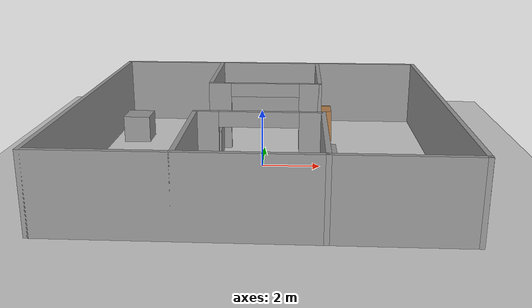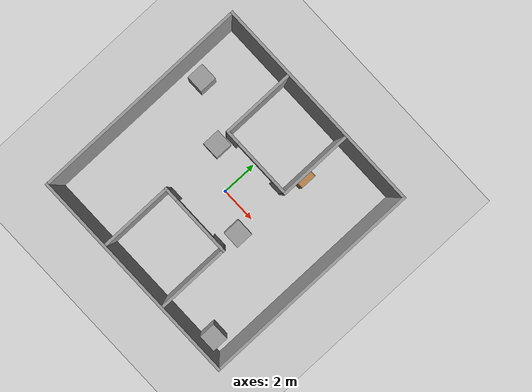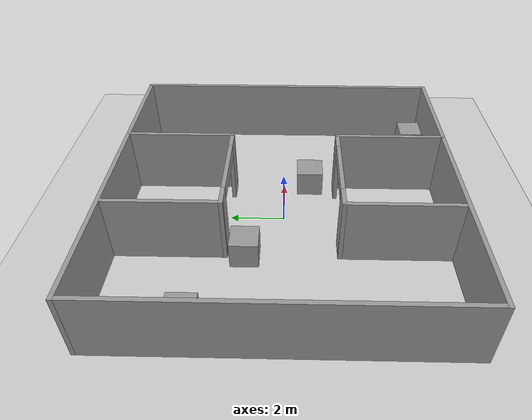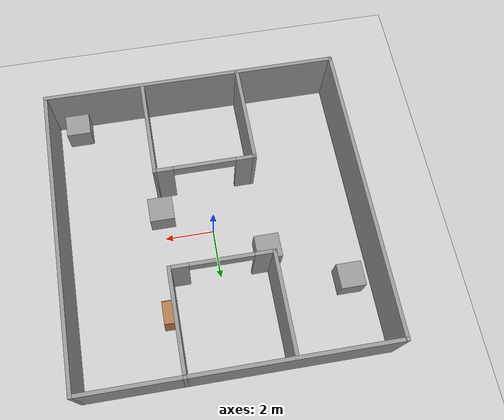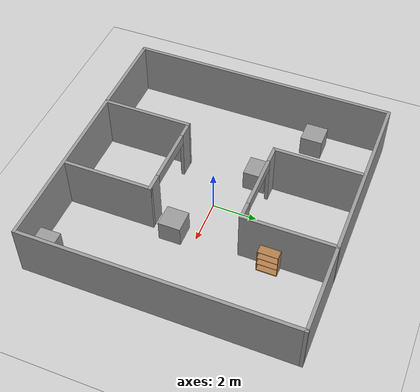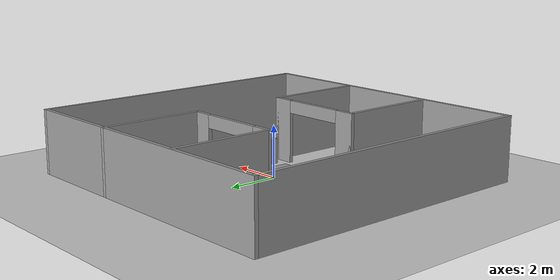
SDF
<sdf version="1.6">
 <world name="default">
  <light name="sun" type="directional">
   <pose>0 0 10 0 -0 0</pose>
   <diffuse>0.8 0.8 0.8 1</diffuse>
   <specular>0.1 0.1 0.1 1</specular>
   <attenuation>
    <range>1000</range>
    <constant>0.9</constant>
    <linear>0.01</linear>
    <quadratic>0.001</quadratic>
   </attenuation>
   <direction>-0.5 0.5 -1</direction>
  </light>
  <model name="ground_plane">
   <static>1</static>
   <link name="link">
    <collision name="collision">
     <geometry><plane><normal>0 0 1</normal><size>100 100</size></plane></geometry>
     <surface><friction><ode><mu>100</mu><mu2>50</mu2></ode></friction></surface>
    </collision>
    <visual name="visual">
     <cast_shadows>0</cast_shadows>
     <geometry><plane><normal>0 0 1</normal><size>100 100</size></plane></geometry>
     <material>
      <script><uri>file://media/materials/scripts/gazebo.material</uri><name>Gazebo/Grey</name></script>
     </material>
    </visual>
   </link>
  </model>
  <gravity>0 0 -9.8</gravity>
  <magnetic_field>6e-06 2.3e-05 -4.2e-05</magnetic_field>
  <atmosphere type="adiabatic"/>
  <physics name="default_physics" default="0" type="ode">
   <max_step_size>0.001</max_step_size>
   <real_time_factor>1</real_time_factor>
   <real_time_update_rate>1000</real_time_update_rate>
  </physics>
  <scene><ambient>0.4 0.4 0.4 1</ambient><background>0.7 0.7 0.7 1</background><shadows>1</shadows></scene>
  <spherical_coordinates>
   <surface_model>EARTH_WGS84</surface_model>
   <latitude_deg>0</latitude_deg>
   <longitude_deg>0</longitude_deg>
   <elevation>0</elevation>
   <heading_deg>0</heading_deg>
  </spherical_coordinates>
  <model name="Warehouse_">
   <link name="Wall_57">
    <collision name="Wall_57_Collision">
     <geometry><box><size>12.15 0.15 2.5</size></box></geometry>
     <pose>0 0 1.25 0 -0 0</pose>
    </collision>
    <visual name="Wall_57_Visual">
     <pose>0 0 1.25 0 -0 0</pose>
     <geometry><box><size>12.15 0.15 2.5</size></box></geometry>
     <material>
      <script><uri>file://media/materials/scripts/gazebo.material</uri><name>Gazebo/Grey</name></script>
      <ambient>1 1 1 1</ambient>
     </material>
    </visual>
    <pose>0 -6 0 0 -0 0</pose>
   </link>
   <link name="Wall_59">
    <collision name="Wall_59_Collision">
     <geometry><box><size>12.15 0.15 2.5</size></box></geometry>
     <pose>0 0 1.25 0 -0 0</pose>
    </collision>
    <visual name="Wall_59_Visual">
     <pose>0 0 1.25 0 -0 0</pose>
     <geometry><box><size>12.15 0.15 2.5</size></box></geometry>
     <material>
      <script><uri>file://media/materials/scripts/gazebo.material</uri><name>Gazebo/Grey</name></script>
      <ambient>1 1 1 1</ambient>
     </material>
    </visual>
    <pose>6 0 0 0 -0 1.5708</pose>
   </link>
   <link name="Wall_61">
    <collision name="Wall_61_Collision">
     <geometry><box><size>12.15 0.15 2.5</size></box></geometry>
     <pose>0 0 1.25 0 -0 0</pose>
    </collision>
    <visual name="Wall_61_Visual">
     <pose>0 0 1.25 0 -0 0</pose>
     <geometry><box><size>12.15 0.15 2.5</size></box></geometry>
     <material>
      <script><uri>file://media/materials/scripts/gazebo.material</uri><name>Gazebo/Grey</name></script>
      <ambient>1 1 1 1</ambient>
     </material>
    </visual>
    <pose>0 6 0 0 -0 3.14159</pose>
   </link>
   <link name="Wall_64">
    <collision name="Wall_64_Collision">
     <geometry><box><size>12.15 0.15 2.5</size></box></geometry>
     <pose>0 0 1.25 0 -0 0</pose>
    </collision>
    <visual name="Wall_64_Visual">
     <pose>0 0 1.25 0 -0 0</pose>
     <geometry><box><size>12.15 0.15 2.5</size></box></geometry>
     <material>
      <script><uri>file://media/materials/scripts/gazebo.material</uri><name>Gazebo/Grey</name></script>
      <ambient>1 1 1 1</ambient>
     </material>
    </visual>
    <pose>-6 0 0 0 0 -1.5708</pose>
   </link>
   <link name="Wall_68">
    <pose>0 -2 0 0 -0 0</pose>
    <visual name="Wall_68_Visual_0">
     <pose>-1.6625 0 1.25 0 -0 0</pose>
     <geometry><box><size>0.825 0.15 2.5</size></box></geometry>
     <material>
      <script><uri>file://media/materials/scripts/gazebo.material</uri><name>Gazebo/Grey</name></script>
      <ambient>1 1 1 1</ambient>
     </material>
    </visual>
    <collision name="Wall_68_Collision_0">
     <geometry><box><size>0.825 0.15 2.5</size></box></geometry>
     <pose>-1.6625 0 1.25 0 -0 0</pose>
    </collision>
    <visual name="Wall_68_Visual_1">
     <pose>1.6625 0 1.25 0 -0 0</pose>
     <geometry><box><size>0.825 0.15 2.5</size></box></geometry>
     <material>
      <script><uri>file://media/materials/scripts/gazebo.material</uri><name>Gazebo/Grey</name></script>
      <ambient>1 1 1 1</ambient>
     </material>
    </visual>
    <collision name="Wall_68_Collision_1">
     <geometry><box><size>0.825 0.15 2.5</size></box></geometry>
     <pose>1.6625 0 1.25 0 -0 0</pose>
    </collision>
    <visual name="Wall_68_Visual_2">
     <pose>0 0 2.25 0 -0 0</pose>
     <geometry><box><size>2.5 0.15 0.5</size></box></geometry>
     <material>
      <script><uri>file://media/materials/scripts/gazebo.material</uri><name>Gazebo/Grey</name></script>
      <ambient>1 1 1 1</ambient>
     </material>
    </visual>
    <collision name="Wall_68_Collision_2">
     <geometry><box><size>2.5 0.15 0.5</size></box></geometry>
     <pose>0 0 2.25 0 -0 0</pose>
    </collision>
   </link>
   <link name="Wall_70">
    <collision name="Wall_70_Collision">
     <geometry><box><size>4.15 0.15 2.5</size></box></geometry>
     <pose>0 0 1.25 0 -0 0</pose>
    </collision>
    <visual name="Wall_70_Visual">
     <pose>0 0 1.25 0 -0 0</pose>
     <geometry><box><size>4.15 0.15 2.5</size></box></geometry>
     <material>
      <script><uri>file://media/materials/scripts/gazebo.material</uri><name>Gazebo/Grey</name></script>
      <ambient>1 1 1 1</ambient>
     </material>
    </visual>
    <pose>2 -4 0 0 0 -1.5708</pose>
   </link>
   <link name="Wall_72">
    <collision name="Wall_72_Collision">
     <geometry><box><size>4.15 0.15 2.5</size></box></geometry>
     <pose>0 0 1.25 0 -0 0</pose>
    </collision>
    <visual name="Wall_72_Visual">
     <pose>0 0 1.25 0 -0 0</pose>
     <geometry><box><size>4.15 0.15 2.5</size></box></geometry>
     <material>
      <script><uri>file://media/materials/scripts/gazebo.material</uri><name>Gazebo/Grey</name></script>
      <ambient>1 1 1 1</ambient>
     </material>
    </visual>
    <pose>-2 -4 0 0 0 -1.5708</pose>
   </link>
   <link name="Wall_74">
    <pose>0 2 0 0 -0 0</pose>
    <visual name="Wall_74_Visual_0">
     <pose>-1.6625 0 1.25 0 -0 0</pose>
     <geometry><box><size>0.825 0.15 2.5</size></box></geometry>
     <material>
      <script><uri>file://media/materials/scripts/gazebo.material</uri><name>Gazebo/Grey</name></script>
      <ambient>1 1 1 1</ambient>
     </material>
    </visual>
    <collision name="Wall_74_Collision_0">
     <geometry><box><size>0.825 0.15 2.5</size></box></geometry>
     <pose>-1.6625 0 1.25 0 -0 0</pose>
    </collision>
    <visual name="Wall_74_Visual_1">
     <pose>1.6625 0 1.25 0 -0 0</pose>
     <geometry><box><size>0.825 0.15 2.5</size></box></geometry>
     <material>
      <script><uri>file://media/materials/scripts/gazebo.material</uri><name>Gazebo/Grey</name></script>
      <ambient>1 1 1 1</ambient>
     </material>
    </visual>
    <collision name="Wall_74_Collision_1">
     <geometry><box><size>0.825 0.15 2.5</size></box></geometry>
     <pose>1.6625 0 1.25 0 -0 0</pose>
    </collision>
    <visual name="Wall_74_Visual_2">
     <pose>0 0 2.25 0 -0 0</pose>
     <geometry><box><size>2.5 0.15 0.5</size></box></geometry>
     <material>
      <script><uri>file://media/materials/scripts/gazebo.material</uri><name>Gazebo/Grey</name></script>
      <ambient>1 1 1 1</ambient>
     </material>
    </visual>
    <collision name="Wall_74_Collision_2">
     <geometry><box><size>2.5 0.15 0.5</size></box></geometry>
     <pose>0 0 2.25 0 -0 0</pose>
    </collision>
   </link>
   <link name="Wall_76">
    <collision name="Wall_76_Collision">
     <geometry><box><size>4.15 0.15 2.5</size></box></geometry>
     <pose>0 0 1.25 0 -0 0</pose>
    </collision>
    <visual name="Wall_76_Visual">
     <pose>0 0 1.25 0 -0 0</pose>
     <geometry><box><size>4.15 0.15 2.5</size></box></geometry>
     <material>
      <script><uri>file://media/materials/scripts/gazebo.material</uri><name>Gazebo/Grey</name></script>
      <ambient>1 1 1 1</ambient>
     </material>
    </visual>
    <pose>-2 4 0 0 -0 1.5708</pose>
   </link>
   <link name="Wall_78">
    <collision name="Wall_78_Collision">
     <geometry><box><size>4.15 0.15 2.5</size></box></geometry>
     <pose>0 0 1.25 0 -0 0</pose>
    </collision>
    <visual name="Wall_78_Visual">
     <pose>0 0 1.25 0 -0 0</pose>
     <geometry><box><size>4.15 0.15 2.5</size></box></geometry>
     <material>
      <script><uri>file://media/materials/scripts/gazebo.material</uri><name>Gazebo/Grey</name></script>
      <ambient>1 1 1 1</ambient>
     </material>
    </visual>
    <pose>2 4 0 0 -0 1.5708</pose>
   </link>
   <static>1</static>
  </model>
  <model name="bookshelf_0">
   <link name="link">
    <pose>-0.425483 -0.00785 0 -0.026628 -0.000192 1.5636</pose>
    <inertial><mass>1</mass></inertial>
    <visual name="visual1">
     <pose>0 0.005 0.6 0 -0 0</pose>
     <geometry><box><size>0.9 0.01 1.2</size></box></geometry>
     <material>
      <script><uri>file://media/materials/scripts/gazebo.material</uri><name>Gazebo/Wood</name></script>
      <ambient>1 1 1 1</ambient>
      <diffuse>1 1 1 1</diffuse>
      <specular>0.2 0.2 0.2 1</specular>
      <emissive>0 0 0 1</emissive>
     </material>
    </visual>
    <visual name="visual2">
     <pose>0.45 -0.195 0.6 0 -0 0</pose>
     <geometry><box><size>0.02 0.4 1.2</size></box></geometry>
     <material>
      <script><uri>file://media/materials/scripts/gazebo.material</uri><name>Gazebo/Wood</name></script>
      <ambient>1 1 1 1</ambient>
      <diffuse>1 1 1 1</diffuse>
      <specular>0.2 0.2 0.2 1</specular>
      <emissive>0 0 0 1</emissive>
     </material>
    </visual>
    <visual name="visual3">
     <pose>-0.45 -0.195 0.6 0 -0 0</pose>
     <geometry><box><size>0.02 0.4 1.2</size></box></geometry>
     <material>
      <script><uri>file://media/materials/scripts/gazebo.material</uri><name>Gazebo/Wood</name></script>
      <ambient>1 1 1 1</ambient>
      <diffuse>1 1 1 1</diffuse>
      <specular>0.2 0.2 0.2 1</specular>
      <emissive>0 0 0 1</emissive>
     </material>
    </visual>
    <visual name="visual4">
     <pose>0 -0.195 0.03 0 -0 0</pose>
     <geometry><box><size>0.88 0.4 0.06</size></box></geometry>
     <material>
      <script><uri>file://media/materials/scripts/gazebo.material</uri><name>Gazebo/Wood</name></script>
      <ambient>1 1 1 1</ambient>
      <diffuse>1 1 1 1</diffuse>
      <specular>0.2 0.2 0.2 1</specular>
      <emissive>0 0 0 1</emissive>
     </material>
    </visual>
    <visual name="visual5">
     <pose>0 -0.195 1.19 0 -0 0</pose>
     <geometry><box><size>0.88 0.4 0.02</size></box></geometry>
     <material>
      <script><uri>file://media/materials/scripts/gazebo.material</uri><name>Gazebo/Wood</name></script>
      <ambient>1 1 1 1</ambient>
      <diffuse>1 1 1 1</diffuse>
      <specular>0.2 0.2 0.2 1</specular>
      <emissive>0 0 0 1</emissive>
     </material>
    </visual>
    <visual name="visual6">
     <pose>0 -0.195 0.43 0 -0 0</pose>
     <geometry><box><size>0.88 0.4 0.02</size></box></geometry>
     <material>
      <script><uri>file://media/materials/scripts/gazebo.material</uri><name>Gazebo/Wood</name></script>
      <ambient>1 1 1 1</ambient>
      <diffuse>1 1 1 1</diffuse>
      <specular>0.2 0.2 0.2 1</specular>
      <emissive>0 0 0 1</emissive>
     </material>
    </visual>
    <visual name="visual7">
     <pose>0 -0.195 0.8 0 -0 0</pose>
     <geometry><box><size>0.88 0.4 0.02</size></box></geometry>
     <material>
      <script><uri>file://media/materials/scripts/gazebo.material</uri><name>Gazebo/Wood</name></script>
      <ambient>1 1 1 1</ambient>
      <diffuse>1 1 1 1</diffuse>
      <specular>0.2 0.2 0.2 1</specular>
      <emissive>0 0 0 1</emissive>
     </material>
    </visual>
    <collision name="back">
     <pose>0 0.005 0.6 0 -0 0</pose>
     <geometry><box><size>0.9 0.01 1.2</size></box></geometry>
     <surface>
      <friction>
       <ode><mu>1</mu><mu2>1</mu2><fdir1>0 0 0</fdir1><slip1>0</slip1><slip2>0</slip2></ode>
       <torsional>
        <coefficient>1</coefficient>
        <patch_radius>0</patch_radius>
        <surface_radius>0</surface_radius>
        <use_patch_radius>1</use_patch_radius>
        <ode><slip>0</slip></ode>
       </torsional>
      </friction>
      <bounce><restitution_coefficient>0</restitution_coefficient><threshold>1e+06</threshold></bounce>
      <contact>
       <collide_without_contact>0</collide_without_contact>
       <collide_without_contact_bitmask>1</collide_without_contact_bitmask>
       <collide_bitmask>1</collide_bitmask>
       <ode>
        <soft_cfm>0</soft_cfm>
        <soft_erp>0.2</soft_erp>
        <kp>1e+13</kp>
        <kd>1</kd>
        <max_vel>0.01</max_vel>
        <min_depth>0</min_depth>
       </ode>
       <bullet>
        <split_impulse>1</split_impulse>
        <split_impulse_penetration_threshold>-0.01</split_impulse_penetration_threshold>
        <soft_cfm>0</soft_cfm>
        <soft_erp>0.2</soft_erp>
        <kp>1e+13</kp>
        <kd>1</kd>
       </bullet>
      </contact>
     </surface>
    </collision>
    <collision name="left_side">
     <pose>0.45 -0.195 0.6 0 -0 0</pose>
     <geometry><box><size>0.02 0.4 1.2</size></box></geometry>
     <surface>
      <friction>
       <ode><mu>1</mu><mu2>1</mu2><fdir1>0 0 0</fdir1><slip1>0</slip1><slip2>0</slip2></ode>
       <torsional>
        <coefficient>1</coefficient>
        <patch_radius>0</patch_radius>
        <surface_radius>0</surface_radius>
        <use_patch_radius>1</use_patch_radius>
        <ode><slip>0</slip></ode>
       </torsional>
      </friction>
      <bounce><restitution_coefficient>0</restitution_coefficient><threshold>1e+06</threshold></bounce>
      <contact>
       <collide_without_contact>0</collide_without_contact>
       <collide_without_contact_bitmask>1</collide_without_contact_bitmask>
       <collide_bitmask>1</collide_bitmask>
       <ode>
        <soft_cfm>0</soft_cfm>
        <soft_erp>0.2</soft_erp>
        <kp>1e+13</kp>
        <kd>1</kd>
        <max_vel>0.01</max_vel>
        <min_depth>0</min_depth>
       </ode>
       <bullet>
        <split_impulse>1</split_impulse>
        <split_impulse_penetration_threshold>-0.01</split_impulse_penetration_threshold>
        <soft_cfm>0</soft_cfm>
        <soft_erp>0.2</soft_erp>
        <kp>1e+13</kp>
        <kd>1</kd>
       </bullet>
      </contact>
     </surface>
    </collision>
    <collision name="right_side">
     <pose>-0.45 -0.195 0.6 0 -0 0</pose>
     <geometry><box><size>0.02 0.4 1.2</size></box></geometry>
     <surface>
      <friction>
       <ode><mu>1</mu><mu2>1</mu2><fdir1>0 0 0</fdir1><slip1>0</slip1><slip2>0</slip2></ode>
       <torsional>
        <coefficient>1</coefficient>
        <patch_radius>0</patch_radius>
        <surface_radius>0</surface_radius>
        <use_patch_radius>1</use_patch_radius>
        <ode><slip>0</slip></ode>
       </torsional>
      </friction>
      <bounce><restitution_coefficient>0</restitution_coefficient><threshold>1e+06</threshold></bounce>
      <contact>
       <collide_without_contact>0</collide_without_contact>
       <collide_without_contact_bitmask>1</collide_without_contact_bitmask>
       <collide_bitmask>1</collide_bitmask>
       <ode>
        <soft_cfm>0</soft_cfm>
        <soft_erp>0.2</soft_erp>
        <kp>1e+13</kp>
        <kd>1</kd>
        <max_vel>0.01</max_vel>
        <min_depth>0</min_depth>
       </ode>
       <bullet>
        <split_impulse>1</split_impulse>
        <split_impulse_penetration_threshold>-0.01</split_impulse_penetration_threshold>
        <soft_cfm>0</soft_cfm>
        <soft_erp>0.2</soft_erp>
        <kp>1e+13</kp>
        <kd>1</kd>
       </bullet>
      </contact>
     </surface>
    </collision>
    <collision name="bottom">
     <pose>0 -0.195 0.03 0 -0 0</pose>
     <geometry><box><size>0.88 0.4 0.06</size></box></geometry>
     <surface>
      <friction>
       <ode><mu>1</mu><mu2>1</mu2><fdir1>0 0 0</fdir1><slip1>0</slip1><slip2>0</slip2></ode>
       <torsional>
        <coefficient>1</coefficient>
        <patch_radius>0</patch_radius>
        <surface_radius>0</surface_radius>
        <use_patch_radius>1</use_patch_radius>
        <ode><slip>0</slip></ode>
       </torsional>
      </friction>
      <bounce><restitution_coefficient>0</restitution_coefficient><threshold>1e+06</threshold></bounce>
      <contact>
       <collide_without_contact>0</collide_without_contact>
       <collide_without_contact_bitmask>1</collide_without_contact_bitmask>
       <collide_bitmask>1</collide_bitmask>
       <ode>
        <soft_cfm>0</soft_cfm>
        <soft_erp>0.2</soft_erp>
        <kp>1e+13</kp>
        <kd>1</kd>
        <max_vel>0.01</max_vel>
        <min_depth>0</min_depth>
       </ode>
       <bullet>
        <split_impulse>1</split_impulse>
        <split_impulse_penetration_threshold>-0.01</split_impulse_penetration_threshold>
        <soft_cfm>0</soft_cfm>
        <soft_erp>0.2</soft_erp>
        <kp>1e+13</kp>
        <kd>1</kd>
       </bullet>
      </contact>
     </surface>
    </collision>
    <collision name="top">
     <pose>0 -0.195 1.19 0 -0 0</pose>
     <geometry><box><size>0.88 0.4 0.02</size></box></geometry>
     <surface>
      <friction>
       <ode><mu>1</mu><mu2>1</mu2><fdir1>0 0 0</fdir1><slip1>0</slip1><slip2>0</slip2></ode>
       <torsional>
        <coefficient>1</coefficient>
        <patch_radius>0</patch_radius>
        <surface_radius>0</surface_radius>
        <use_patch_radius>1</use_patch_radius>
        <ode><slip>0</slip></ode>
       </torsional>
      </friction>
      <bounce><restitution_coefficient>0</restitution_coefficient><threshold>1e+06</threshold></bounce>
      <contact>
       <collide_without_contact>0</collide_without_contact>
       <collide_without_contact_bitmask>1</collide_without_contact_bitmask>
       <collide_bitmask>1</collide_bitmask>
       <ode>
        <soft_cfm>0</soft_cfm>
        <soft_erp>0.2</soft_erp>
        <kp>1e+13</kp>
        <kd>1</kd>
        <max_vel>0.01</max_vel>
        <min_depth>0</min_depth>
       </ode>
       <bullet>
        <split_impulse>1</split_impulse>
        <split_impulse_penetration_threshold>-0.01</split_impulse_penetration_threshold>
        <soft_cfm>0</soft_cfm>
        <soft_erp>0.2</soft_erp>
        <kp>1e+13</kp>
        <kd>1</kd>
       </bullet>
      </contact>
     </surface>
    </collision>
    <collision name="low_shelf">
     <pose>0 -0.195 0.43 0 -0 0</pose>
     <geometry><box><size>0.88 0.4 0.02</size></box></geometry>
     <surface>
      <friction>
       <ode><mu>1</mu><mu2>1</mu2><fdir1>0 0 0</fdir1><slip1>0</slip1><slip2>0</slip2></ode>
       <torsional>
        <coefficient>1</coefficient>
        <patch_radius>0</patch_radius>
        <surface_radius>0</surface_radius>
        <use_patch_radius>1</use_patch_radius>
        <ode><slip>0</slip></ode>
       </torsional>
      </friction>
      <bounce><restitution_coefficient>0</restitution_coefficient><threshold>1e+06</threshold></bounce>
      <contact>
       <collide_without_contact>0</collide_without_contact>
       <collide_without_contact_bitmask>1</collide_without_contact_bitmask>
       <collide_bitmask>1</collide_bitmask>
       <ode>
        <soft_cfm>0</soft_cfm>
        <soft_erp>0.2</soft_erp>
        <kp>1e+13</kp>
        <kd>1</kd>
        <max_vel>0.01</max_vel>
        <min_depth>0</min_depth>
       </ode>
       <bullet>
        <split_impulse>1</split_impulse>
        <split_impulse_penetration_threshold>-0.01</split_impulse_penetration_threshold>
        <soft_cfm>0</soft_cfm>
        <soft_erp>0.2</soft_erp>
        <kp>1e+13</kp>
        <kd>1</kd>
       </bullet>
      </contact>
     </surface>
    </collision>
    <collision name="high_shelf">
     <pose>0 -0.195 0.8 0 -0 0</pose>
     <geometry><box><size>0.88 0.4 0.02</size></box></geometry>
     <surface>
      <friction>
       <ode><mu>1</mu><mu2>1</mu2><fdir1>0 0 0</fdir1><slip1>0</slip1><slip2>0</slip2></ode>
       <torsional>
        <coefficient>1</coefficient>
        <patch_radius>0</patch_radius>
        <surface_radius>0</surface_radius>
        <use_patch_radius>1</use_patch_radius>
        <ode><slip>0</slip></ode>
       </torsional>
      </friction>
      <bounce><restitution_coefficient>0</restitution_coefficient><threshold>1e+06</threshold></bounce>
      <contact>
       <collide_without_contact>0</collide_without_contact>
       <collide_without_contact_bitmask>1</collide_without_contact_bitmask>
       <collide_bitmask>1</collide_bitmask>
       <ode>
        <soft_cfm>0</soft_cfm>
        <soft_erp>0.2</soft_erp>
        <kp>1e+13</kp>
        <kd>1</kd>
        <max_vel>0.01</max_vel>
        <min_depth>0</min_depth>
       </ode>
       <bullet>
        <split_impulse>1</split_impulse>
        <split_impulse_penetration_threshold>-0.01</split_impulse_penetration_threshold>
        <soft_cfm>0</soft_cfm>
        <soft_erp>0.2</soft_erp>
        <kp>1e+13</kp>
        <kd>1</kd>
       </bullet>
      </contact>
     </surface>
    </collision>
   </link>
   <link name="link_0">
    <pose>-0.56517 -4.36239 0.5 0 -0 0</pose>
    <inertial>
     <mass>1</mass>
     <inertia>
      <ixx>0.166667</ixx>
      <ixy>0</ixy>
      <ixz>0</ixz>
      <iyy>0.166667</iyy>
      <iyz>0</iyz>
      <izz>0.166667</izz>
     </inertia>
    </inertial>
    <visual name="visual">
     <geometry><box><size>1 1 1</size></box></geometry>
     <material>
      <lighting>1</lighting>
      <script><uri>file://media/materials/scripts/gazebo.material</uri><name>Gazebo/Grey</name></script>
      <ambient>0.3 0.3 0.3 1</ambient>
      <diffuse>0.7 0.7 0.7 1</diffuse>
      <specular>0.01 0.01 0.01 1</specular>
      <emissive>0 0 0 1</emissive>
     </material>
    </visual>
    <collision name="collision">
     <geometry><box><size>1 1 1</size></box></geometry>
     <surface>
      <friction>
       <ode><mu>1</mu><mu2>1</mu2><fdir1>0 0 0</fdir1><slip1>0</slip1><slip2>0</slip2></ode>
       <torsional>
        <coefficient>1</coefficient>
        <patch_radius>0</patch_radius>
        <surface_radius>0</surface_radius>
        <use_patch_radius>1</use_patch_radius>
        <ode><slip>0</slip></ode>
       </torsional>
      </friction>
      <bounce><restitution_coefficient>0</restitution_coefficient><threshold>1e+06</threshold></bounce>
      <contact>
       <collide_without_contact>0</collide_without_contact>
       <collide_without_contact_bitmask>1</collide_without_contact_bitmask>
       <collide_bitmask>1</collide_bitmask>
       <ode>
        <soft_cfm>0</soft_cfm>
        <soft_erp>0.2</soft_erp>
        <kp>1e+13</kp>
        <kd>1</kd>
        <max_vel>0.01</max_vel>
        <min_depth>0</min_depth>
       </ode>
       <bullet>
        <split_impulse>1</split_impulse>
        <split_impulse_penetration_threshold>-0.01</split_impulse_penetration_threshold>
        <soft_cfm>0</soft_cfm>
        <soft_erp>0.2</soft_erp>
        <kp>1e+13</kp>
        <kd>1</kd>
       </bullet>
      </contact>
     </surface>
    </collision>
   </link>
   <link name="link_1">
    <pose>-4.57974 -2.05814 0.5 0 -0 0</pose>
    <inertial>
     <mass>1</mass>
     <inertia>
      <ixx>0.166667</ixx>
      <ixy>0</ixy>
      <ixz>0</ixz>
      <iyy>0.166667</iyy>
      <iyz>0</iyz>
      <izz>0.166667</izz>
     </inertia>
    </inertial>
    <visual name="visual">
     <geometry><box><size>1 1 1</size></box></geometry>
     <material>
      <lighting>1</lighting>
      <script><uri>file://media/materials/scripts/gazebo.material</uri><name>Gazebo/Grey</name></script>
      <ambient>0.3 0.3 0.3 1</ambient>
      <diffuse>0.7 0.7 0.7 1</diffuse>
      <specular>0.01 0.01 0.01 1</specular>
      <emissive>0 0 0 1</emissive>
     </material>
    </visual>
    <collision name="collision">
     <geometry><box><size>1 1 1</size></box></geometry>
     <surface>
      <friction>
       <ode><mu>1</mu><mu2>1</mu2><fdir1>0 0 0</fdir1><slip1>0</slip1><slip2>0</slip2></ode>
       <torsional>
        <coefficient>1</coefficient>
        <patch_radius>0</patch_radius>
        <surface_radius>0</surface_radius>
        <use_patch_radius>1</use_patch_radius>
        <ode><slip>0</slip></ode>
       </torsional>
      </friction>
      <bounce><restitution_coefficient>0</restitution_coefficient><threshold>1e+06</threshold></bounce>
      <contact>
       <collide_without_contact>0</collide_without_contact>
       <collide_without_contact_bitmask>1</collide_without_contact_bitmask>
       <collide_bitmask>1</collide_bitmask>
       <ode>
        <soft_cfm>0</soft_cfm>
        <soft_erp>0.2</soft_erp>
        <kp>1e+13</kp>
        <kd>1</kd>
        <max_vel>0.01</max_vel>
        <min_depth>0</min_depth>
       </ode>
       <bullet>
        <split_impulse>1</split_impulse>
        <split_impulse_penetration_threshold>-0.01</split_impulse_penetration_threshold>
        <soft_cfm>0</soft_cfm>
        <soft_erp>0.2</soft_erp>
        <kp>1e+13</kp>
        <kd>1</kd>
       </bullet>
      </contact>
     </surface>
    </collision>
   </link>
   <link name="link_2">
    <pose>2.43483 -8.85478 0.5 0 -0 0</pose>
    <inertial>
     <mass>1</mass>
     <inertia>
      <ixx>0.166667</ixx>
      <ixy>0</ixy>
      <ixz>0</ixz>
      <iyy>0.166667</iyy>
      <iyz>0</iyz>
      <izz>0.166667</izz>
     </inertia>
    </inertial>
    <visual name="visual">
     <geometry><box><size>1 1 1</size></box></geometry>
     <material>
      <lighting>1</lighting>
      <script><uri>file://media/materials/scripts/gazebo.material</uri><name>Gazebo/Grey</name></script>
      <ambient>0.3 0.3 0.3 1</ambient>
      <diffuse>0.7 0.7 0.7 1</diffuse>
      <specular>0.01 0.01 0.01 1</specular>
      <emissive>0 0 0 1</emissive>
     </material>
    </visual>
    <collision name="collision">
     <geometry><box><size>1 1 1</size></box></geometry>
     <surface>
      <friction>
       <ode><mu>1</mu><mu2>1</mu2><fdir1>0 0 0</fdir1><slip1>0</slip1><slip2>0</slip2></ode>
       <torsional>
        <coefficient>1</coefficient>
        <patch_radius>0</patch_radius>
        <surface_radius>0</surface_radius>
        <use_patch_radius>1</use_patch_radius>
        <ode><slip>0</slip></ode>
       </torsional>
      </friction>
      <bounce><restitution_coefficient>0</restitution_coefficient><threshold>1e+06</threshold></bounce>
      <contact>
       <collide_without_contact>0</collide_without_contact>
       <collide_without_contact_bitmask>1</collide_without_contact_bitmask>
       <collide_bitmask>1</collide_bitmask>
       <ode>
        <soft_cfm>0</soft_cfm>
        <soft_erp>0.2</soft_erp>
        <kp>1e+13</kp>
        <kd>1</kd>
        <max_vel>0.01</max_vel>
        <min_depth>0</min_depth>
       </ode>
       <bullet>
        <split_impulse>1</split_impulse>
        <split_impulse_penetration_threshold>-0.01</split_impulse_penetration_threshold>
        <soft_cfm>0</soft_cfm>
        <soft_erp>0.2</soft_erp>
        <kp>1e+13</kp>
        <kd>1</kd>
       </bullet>
      </contact>
     </surface>
    </collision>
   </link>
   <link name="link_3">
    <pose>-7.56517 -0.36239 0.5 0 -0 0</pose>
    <inertial>
     <mass>1</mass>
     <inertia>
      <ixx>0.166667</ixx>
      <ixy>0</ixy>
      <ixz>0</ixz>
      <iyy>0.166667</iyy>
      <iyz>0</iyz>
      <izz>0.166667</izz>
     </inertia>
    </inertial>
    <visual name="visual">
     <geometry><box><size>1 1 1</size></box></geometry>
     <material>
      <lighting>1</lighting>
      <script><uri>file://media/materials/scripts/gazebo.material</uri><name>Gazebo/Grey</name></script>
      <ambient>0.3 0.3 0.3 1</ambient>
      <diffuse>0.7 0.7 0.7 1</diffuse>
      <specular>0.01 0.01 0.01 1</specular>
      <emissive>0 0 0 1</emissive>
     </material>
    </visual>
    <collision name="collision">
     <geometry><box><size>1 1 1</size></box></geometry>
     <surface>
      <friction>
       <ode><mu>1</mu><mu2>1</mu2><fdir1>0 0 0</fdir1><slip1>0</slip1><slip2>0</slip2></ode>
       <torsional>
        <coefficient>1</coefficient>
        <patch_radius>0</patch_radius>
        <surface_radius>0</surface_radius>
        <use_patch_radius>1</use_patch_radius>
        <ode><slip>0</slip></ode>
       </torsional>
      </friction>
      <bounce><restitution_coefficient>0</restitution_coefficient><threshold>1e+06</threshold></bounce>
      <contact>
       <collide_without_contact>0</collide_without_contact>
       <collide_without_contact_bitmask>1</collide_without_contact_bitmask>
       <collide_bitmask>1</collide_bitmask>
       <ode>
        <soft_cfm>0</soft_cfm>
        <soft_erp>0.2</soft_erp>
        <kp>1e+13</kp>
        <kd>1</kd>
        <max_vel>0.01</max_vel>
        <min_depth>0</min_depth>
       </ode>
       <bullet>
        <split_impulse>1</split_impulse>
        <split_impulse_penetration_threshold>-0.01</split_impulse_penetration_threshold>
        <soft_cfm>0</soft_cfm>
        <soft_erp>0.2</soft_erp>
        <kp>1e+13</kp>
        <kd>1</kd>
       </bullet>
      </contact>
     </surface>
    </collision>
   </link>
   <static>1</static>
   <pose>2.56517 3.36239 0 0 -0 0</pose>
  </model>
 </world>
</sdf>
